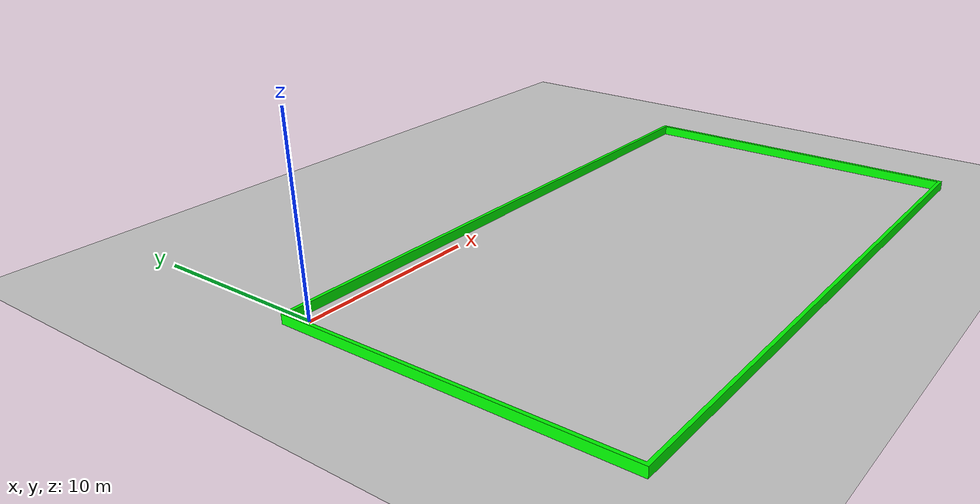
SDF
<sdf version="1.4">
 <world name="default">
  <light name="sun" type="directional">
   <pose>0 0 10 0 0 0</pose>
   <diffuse>0.8 0.8 0.8 1</diffuse>
   <specular>0.2 0.2 0.2 1</specular>
   <attenuation>
    <range>1000</range>
    <constant>0.9</constant>
    <linear>0.01</linear>
    <quadratic>0.001</quadratic>
   </attenuation>
   <direction>-0.5 0.1 -0.9</direction>
  </light>
  <model name="ground_plane">
   <static>true</static>
   <link name="link">
    <collision name="collision">
     <geometry><plane><normal>0 0 1</normal><size>100 100</size></plane></geometry>
     <surface><friction><ode><mu>100</mu><mu2>50</mu2></ode></friction></surface>
    </collision>
    <visual name="visual">
     <cast_shadows>0</cast_shadows>
     <geometry><plane><normal>0 0 1</normal><size>100 100</size></plane></geometry>
    </visual>
    <velocity_decay><linear>0</linear><angular>0</angular></velocity_decay>
   </link>
  </model>
  <physics type="ode">
   <max_step_size>0.001</max_step_size>
   <real_time_factor>1</real_time_factor>
   <real_time_update_rate>1000</real_time_update_rate>
   <gravity>0 0 -9.8</gravity>
  </physics>
  <scene><ambient>0.4 0.4 0.4 1</ambient><background>0.7 0.7 0.7 1</background><shadows>1</shadows></scene>
  <spherical_coordinates>
   <surface_model>EARTH_WGS84</surface_model>
   <latitude_deg>0</latitude_deg>
   <longitude_deg>0</longitude_deg>
   <elevation>0</elevation>
   <heading_deg>0</heading_deg>
  </spherical_coordinates>
  <include><uri>model://highbay</uri></include>
 </world>
</sdf>

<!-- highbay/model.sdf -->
<sdf version="1.4">
  <model name="highbay">
    <static>true</static>
    <link name="link">
      <pose>0 0 0 0 0 0</pose>
      <must_be_base_link>1</must_be_base_link>
      <collision name="collision">
        <geometry>
          <mesh>
            <uri>model://highbay/meshes/highBay_newOriginExtrudedEmpty.dae</uri>
          </mesh>
        </geometry>
      </collision>
      <visual name="visual">
        <geometry>
          <mesh>
            <uri>model://highbay/meshes/highBay_newOriginExtrudedEmpty.dae</uri>
          </mesh>
        </geometry>
        <material>
          <ambient>1 0 0 1</ambient>
          <diffuse>0 1 0 1</diffuse>
          <specular>0.1 0.1 0.1 1</specular>
          <emissive>0 0 0 0</emissive>
        </material>
        <cast_shadows>false</cast_shadows>
      </visual>
    </link>
  </model>
</sdf>
